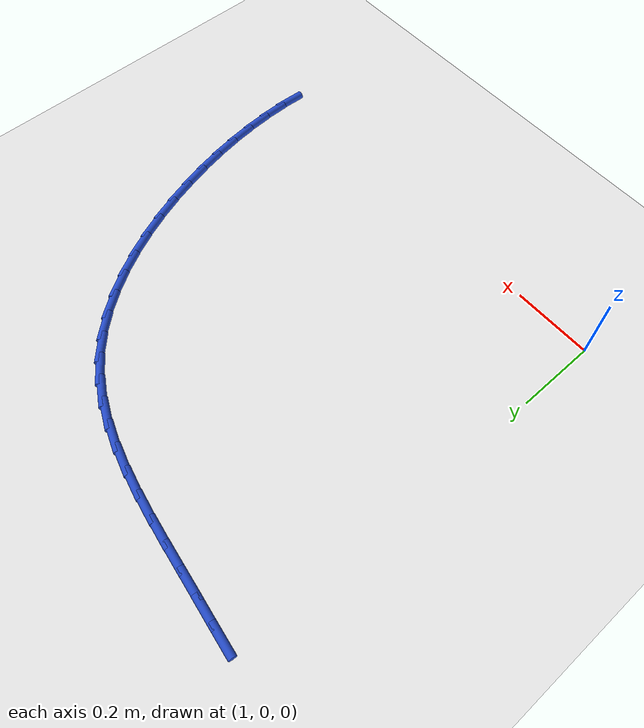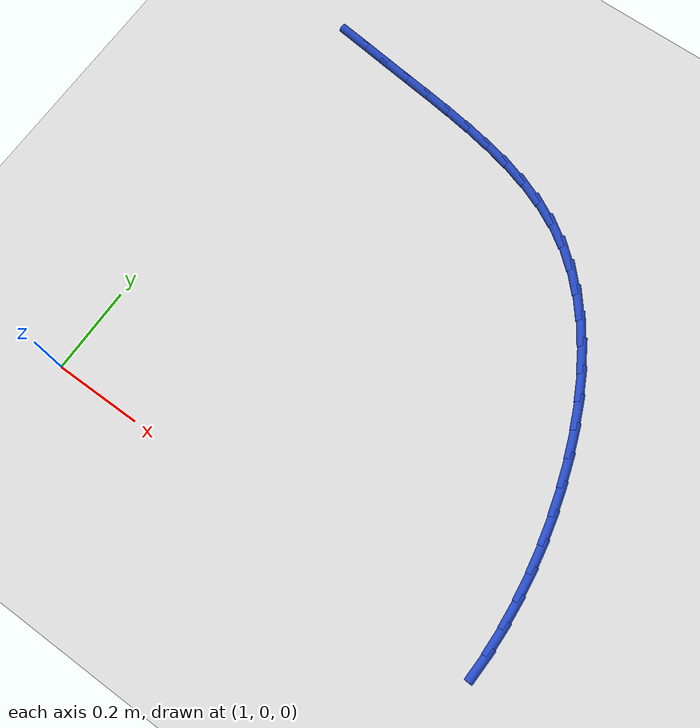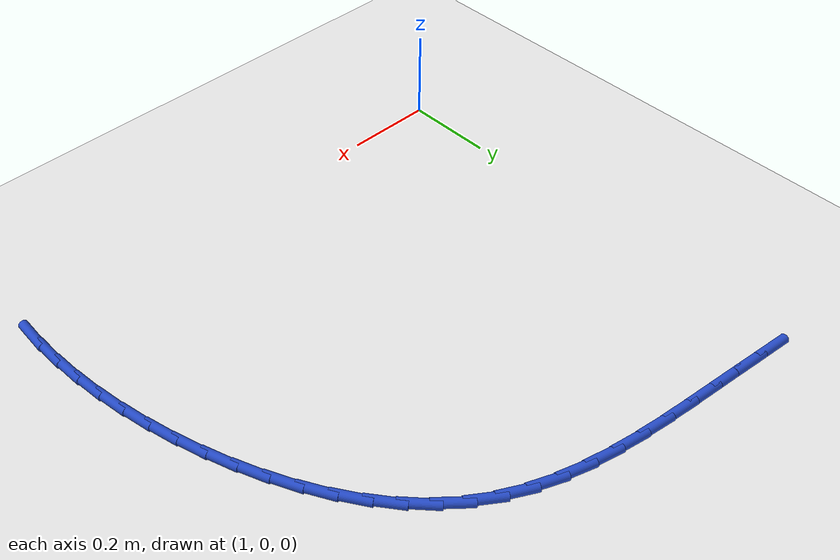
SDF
<sdf version="1.6">
 <world name="default">
  <model name="ground_plane">
   <static>1</static>
   <link name="link">
    <collision name="collision">
     <geometry><plane><normal>0 0 1</normal><size>100 100</size></plane></geometry>
     <surface><friction><ode><mu>100</mu><mu2>50</mu2></ode></friction></surface>
    </collision>
    <visual name="visual">
     <cast_shadows>0</cast_shadows>
     <geometry><plane><normal>0 0 1</normal><size>100 100</size></plane></geometry>
     <material>
      <script><uri>file://media/materials/scripts/gazebo.material</uri><name>Gazebo/WhiteGlow</name></script>
     </material>
    </visual>
   </link>
  </model>
  <model name="line">
   <link name="link_28">
    <pose>1.0512674438226834 1.0092971272964144 0.01 0 1.57 -0.11462141122425037</pose>
    <collision name="collision">
     <geometry><cylinder><radius>0.01</radius><length>0.08</length></cylinder></geometry>
    </collision>
    <visual name="visual">
     <material>
      <script><name>Gazebo/Blue</name><uri>file://media/materials/scripts/gazebo.material</uri></script>
     </material>
     <geometry><cylinder><radius>0.01</radius><length>0.08</length></cylinder></geometry>
    </visual>
   </link>
   <link name="link_29">
    <pose>1.1130544321649838 1.0021838365460047 0.01 0 1.57 -0.11784812972269673</pose>
    <collision name="collision">
     <geometry><cylinder><radius>0.01</radius><length>0.08</length></cylinder></geometry>
    </collision>
    <visual name="visual">
     <material>
      <script><name>Gazebo/Blue</name><uri>file://media/materials/scripts/gazebo.material</uri></script>
     </material>
     <geometry><cylinder><radius>0.01</radius><length>0.08</length></cylinder></geometry>
    </visual>
   </link>
   <link name="link_30">
    <pose>1.1751025331042473 0.994837543483416 0.01 0 1.57 -0.11409756510364673</pose>
    <collision name="collision">
     <geometry><cylinder><radius>0.01</radius><length>0.08</length></cylinder></geometry>
    </collision>
    <visual name="visual">
     <material>
      <script><name>Gazebo/Blue</name><uri>file://media/materials/scripts/gazebo.material</uri></script>
     </material>
     <geometry><cylinder><radius>0.01</radius><length>0.08</length></cylinder></geometry>
    </visual>
   </link>
   <link name="link_31">
    <pose>1.23719543463166 0.9877219904177814 0.01 0 1.57 -0.11747193738976824</pose>
    <collision name="collision">
     <geometry><cylinder><radius>0.01</radius><length>0.08</length></cylinder></geometry>
    </collision>
    <visual name="visual">
     <material>
      <script><name>Gazebo/Blue</name><uri>file://media/materials/scripts/gazebo.material</uri></script>
     </material>
     <geometry><cylinder><radius>0.01</radius><length>0.08</length></cylinder></geometry>
    </visual>
   </link>
   <link name="link_32">
    <pose>1.298990776540945 0.9804291949567864 0.01 0 1.57 -0.13223934000646717</pose>
    <collision name="collision">
     <geometry><cylinder><radius>0.01</radius><length>0.08</length></cylinder></geometry>
    </collision>
    <visual name="visual">
     <material>
      <script><name>Gazebo/Blue</name><uri>file://media/materials/scripts/gazebo.material</uri></script>
     </material>
     <geometry><cylinder><radius>0.01</radius><length>0.08</length></cylinder></geometry>
    </visual>
   </link>
   <link name="link_33">
    <pose>1.3601097946373972 0.9722994118382065 0.01 0 1.57 -0.1589200545236248</pose>
    <collision name="collision">
     <geometry><cylinder><radius>0.01</radius><length>0.08</length></cylinder></geometry>
    </collision>
    <visual name="visual">
     <material>
      <script><name>Gazebo/Blue</name><uri>file://media/materials/scripts/gazebo.material</uri></script>
     </material>
     <geometry><cylinder><radius>0.01</radius><length>0.08</length></cylinder></geometry>
    </visual>
   </link>
   <link name="link_34">
    <pose>1.4201737211805434 0.9626728712779618 0.01 0 1.57 -0.1983310808311384</pose>
    <collision name="collision">
     <geometry><cylinder><radius>0.01</radius><length>0.08</length></cylinder></geometry>
    </collision>
    <visual name="visual">
     <material>
      <script><name>Gazebo/Blue</name><uri>file://media/materials/scripts/gazebo.material</uri></script>
     </material>
     <geometry><cylinder><radius>0.01</radius><length>0.08</length></cylinder></geometry>
    </visual>
   </link>
   <link name="link_35">
    <pose>1.4788037884299097 0.950889803491972 0.01 0 1.57 -0.251511107022604</pose>
    <collision name="collision">
     <geometry><cylinder><radius>0.01</radius><length>0.08</length></cylinder></geometry>
    </collision>
    <visual name="visual">
     <material>
      <script><name>Gazebo/Blue</name><uri>file://media/materials/scripts/gazebo.material</uri></script>
     </material>
     <geometry><cylinder><radius>0.01</radius><length>0.08</length></cylinder></geometry>
    </visual>
   </link>
   <link name="link_36">
    <pose>1.5356212286450222 0.9362904386961568 0.01 0 1.57 -0.3195535651721722</pose>
    <collision name="collision">
     <geometry><cylinder><radius>0.01</radius><length>0.08</length></cylinder></geometry>
    </collision>
    <visual name="visual">
     <material>
      <script><name>Gazebo/Blue</name><uri>file://media/materials/scripts/gazebo.material</uri></script>
     </material>
     <geometry><cylinder><radius>0.01</radius><length>0.08</length></cylinder></geometry>
    </visual>
   </link>
   <link name="link_37">
    <pose>1.5902472740854066 0.9182150071064358 0.01 0 1.57 -0.403293802318189</pose>
    <collision name="collision">
     <geometry><cylinder><radius>0.01</radius><length>0.08</length></cylinder></geometry>
    </collision>
    <visual name="visual">
     <material>
      <script><name>Gazebo/Blue</name><uri>file://media/materials/scripts/gazebo.material</uri></script>
     </material>
     <geometry><cylinder><radius>0.01</radius><length>0.08</length></cylinder></geometry>
    </visual>
   </link>
   <link name="link_38">
    <pose>1.6423031570105895 0.8960037389387288 0.01 0 1.57 -0.5028127322522183</pose>
    <collision name="collision">
     <geometry><cylinder><radius>0.01</radius><length>0.08</length></cylinder></geometry>
    </collision>
    <visual name="visual">
     <material>
      <script><name>Gazebo/Blue</name><uri>file://media/materials/scripts/gazebo.material</uri></script>
     </material>
     <geometry><cylinder><radius>0.01</radius><length>0.08</length></cylinder></geometry>
    </visual>
   </link>
   <link name="link_39">
    <pose>1.6914101096800969 0.8689968644089554 0.01 0 1.57 -0.615758003478474</pose>
    <collision name="collision">
     <geometry><cylinder><radius>0.01</radius><length>0.08</length></cylinder></geometry>
    </collision>
    <visual name="visual">
     <material>
      <script><name>Gazebo/Blue</name><uri>file://media/materials/scripts/gazebo.material</uri></script>
     </material>
     <geometry><cylinder><radius>0.01</radius><length>0.08</length></cylinder></geometry>
    </visual>
   </link>
   <link name="link_40">
    <pose>1.7372104937354256 0.8365919794852947 0.01 0 1.57 -0.7269632293816658</pose>
    <collision name="collision">
     <geometry><cylinder><radius>0.01</radius><length>0.08</length></cylinder></geometry>
    </collision>
    <visual name="visual">
     <material>
      <script><name>Gazebo/Blue</name><uri>file://media/materials/scripts/gazebo.material</uri></script>
     </material>
     <geometry><cylinder><radius>0.01</radius><length>0.08</length></cylinder></geometry>
    </visual>
   </link>
   <link name="link_41">
    <pose>1.779603772836773 0.7988847057919027 0.01 0 1.57 -0.8269827403692275</pose>
    <collision name="collision">
     <geometry><cylinder><radius>0.01</radius><length>0.08</length></cylinder></geometry>
    </collision>
    <visual name="visual">
     <material>
      <script><name>Gazebo/Blue</name><uri>file://media/materials/scripts/gazebo.material</uri></script>
     </material>
     <geometry><cylinder><radius>0.01</radius><length>0.08</length></cylinder></geometry>
    </visual>
   </link>
   <link name="link_42">
    <pose>1.8186608984111652 0.7564362500212177 0.01 0 1.57 -0.915996941065235</pose>
    <collision name="collision">
     <geometry><cylinder><radius>0.01</radius><length>0.08</length></cylinder></geometry>
    </collision>
    <visual name="visual">
     <material>
      <script><name>Gazebo/Blue</name><uri>file://media/materials/scripts/gazebo.material</uri></script>
     </material>
     <geometry><cylinder><radius>0.01</radius><length>0.08</length></cylinder></geometry>
    </visual>
   </link>
   <link name="link_43">
    <pose>1.8544559432358165 0.7098162932546508 0.01 0 1.57 -0.9949408469476516</pose>
    <collision name="collision">
     <geometry><cylinder><radius>0.01</radius><length>0.08</length></cylinder></geometry>
    </collision>
    <visual name="visual">
     <material>
      <script><name>Gazebo/Blue</name><uri>file://media/materials/scripts/gazebo.material</uri></script>
     </material>
     <geometry><cylinder><radius>0.01</radius><length>0.08</length></cylinder></geometry>
    </visual>
   </link>
   <link name="link_44">
    <pose>1.8870629800879413 0.6595945165736118 0.01 0 1.57 -1.0650247648495403</pose>
    <collision name="collision">
     <geometry><cylinder><radius>0.01</radius><length>0.08</length></cylinder></geometry>
    </collision>
    <visual name="visual">
     <material>
      <script><name>Gazebo/Blue</name><uri>file://media/materials/scripts/gazebo.material</uri></script>
     </material>
     <geometry><cylinder><radius>0.01</radius><length>0.08</length></cylinder></geometry>
    </visual>
   </link>
   <link name="link_45">
    <pose>1.9165560817447522 0.6063406010595113 0.01 0 1.57 -1.127524290454282</pose>
    <collision name="collision">
     <geometry><cylinder><radius>0.01</radius><length>0.08</length></cylinder></geometry>
    </collision>
    <visual name="visual">
     <material>
      <script><name>Gazebo/Blue</name><uri>file://media/materials/scripts/gazebo.material</uri></script>
     </material>
     <geometry><cylinder><radius>0.01</radius><length>0.08</length></cylinder></geometry>
    </visual>
   </link>
   <link name="link_46">
    <pose>1.9430093209834634 0.5506242277937592 0.01 0 1.57 -1.1836667290593923</pose>
    <collision name="collision">
     <geometry><cylinder><radius>0.01</radius><length>0.08</length></cylinder></geometry>
    </collision>
    <visual name="visual">
     <material>
      <script><name>Gazebo/Blue</name><uri>file://media/materials/scripts/gazebo.material</uri></script>
     </material>
     <geometry><cylinder><radius>0.01</radius><length>0.08</length></cylinder></geometry>
    </visual>
   </link>
   <link name="link_47">
    <pose>1.966496770581289 0.49301507785776627 0.01 0 1.57 -1.2345834495005563</pose>
    <collision name="collision">
     <geometry><cylinder><radius>0.01</radius><length>0.08</length></cylinder></geometry>
    </collision>
    <visual name="visual">
     <material>
      <script><name>Gazebo/Blue</name><uri>file://media/materials/scripts/gazebo.material</uri></script>
     </material>
     <geometry><cylinder><radius>0.01</radius><length>0.08</length></cylinder></geometry>
    </visual>
   </link>
   <link name="link_48">
    <pose>1.9870925033154416 0.43408283233294237 0.01 0 1.57 -1.281323982804112</pose>
    <collision name="collision">
     <geometry><cylinder><radius>0.01</radius><length>0.08</length></cylinder></geometry>
    </collision>
    <visual name="visual">
     <material>
      <script><name>Gazebo/Blue</name><uri>file://media/materials/scripts/gazebo.material</uri></script>
     </material>
     <geometry><cylinder><radius>0.01</radius><length>0.08</length></cylinder></geometry>
    </visual>
   </link>
   <link name="link_49">
    <pose>2.004869890562925 0.3743947692457358 0.01 0 1.57 -1.32615456155325</pose>
    <collision name="collision">
     <geometry><cylinder><radius>0.01</radius><length>0.08</length></cylinder></geometry>
    </collision>
    <visual name="visual">
     <material>
      <script><name>Gazebo/Blue</name><uri>file://media/materials/scripts/gazebo.material</uri></script>
     </material>
     <geometry><cylinder><radius>0.01</radius><length>0.08</length></cylinder></geometry>
    </visual>
   </link>
   <link name="link_50">
    <pose>2.0198566539374316 0.3143617667692599 0.01 0 1.57 -1.3716829300161382</pose>
    <collision name="collision">
     <geometry><cylinder><radius>0.01</radius><length>0.08</length></cylinder></geometry>
    </collision>
    <visual name="visual">
     <material>
      <script><name>Gazebo/Blue</name><uri>file://media/materials/scripts/gazebo.material</uri></script>
     </material>
     <geometry><cylinder><radius>0.01</radius><length>0.08</length></cylinder></geometry>
    </visual>
   </link>
   <link name="link_51">
    <pose>2.0320076276927015 0.25414498497119553 0.01 0 1.57 -1.4182693421418637</pose>
    <collision name="collision">
     <geometry><cylinder><radius>0.01</radius><length>0.08</length></cylinder></geometry>
    </collision>
    <visual name="visual">
     <material>
      <script><name>Gazebo/Blue</name><uri>file://media/materials/scripts/gazebo.material</uri></script>
     </material>
     <geometry><cylinder><radius>0.01</radius><length>0.08</length></cylinder></geometry>
    </visual>
   </link>
   <link name="link_52">
    <pose>2.0412711204434633 0.19388322654187165 0.01 0 1.57 -1.4660697358441082</pose>
    <collision name="collision">
     <geometry><cylinder><radius>0.01</radius><length>0.08</length></cylinder></geometry>
    </collision>
    <visual name="visual">
     <material>
      <script><name>Gazebo/Blue</name><uri>file://media/materials/scripts/gazebo.material</uri></script>
     </material>
     <geometry><cylinder><radius>0.01</radius><length>0.08</length></cylinder></geometry>
    </visual>
   </link>
   <link name="link_53">
    <pose>2.0475954408044457 0.13371529417161726 0.01 0 1.57 -1.5152359874634829</pose>
    <collision name="collision">
     <geometry><cylinder><radius>0.01</radius><length>0.08</length></cylinder></geometry>
    </collision>
    <visual name="visual">
     <material>
      <script><name>Gazebo/Blue</name><uri>file://media/materials/scripts/gazebo.material</uri></script>
     </material>
     <geometry><cylinder><radius>0.01</radius><length>0.08</length></cylinder></geometry>
    </visual>
   </link>
   <link name="link_54">
    <pose>2.0509288973903783 0.07377999055076155 0.01 0 1.57 -1.5659125087668735</pose>
    <collision name="collision">
     <geometry><cylinder><radius>0.01</radius><length>0.08</length></cylinder></geometry>
    </collision>
    <visual name="visual">
     <material>
      <script><name>Gazebo/Blue</name><uri>file://media/materials/scripts/gazebo.material</uri></script>
     </material>
     <geometry><cylinder><radius>0.01</radius><length>0.08</length></cylinder></geometry>
    </visual>
   </link>
   <link name="link_55">
    <pose>2.051219798815988 0.014216118369633438 0.01 0 1.57 1.5233607704978909</pose>
    <collision name="collision">
     <geometry><cylinder><radius>0.01</radius><length>0.08</length></cylinder></geometry>
    </collision>
    <visual name="visual">
     <material>
      <script><name>Gazebo/Blue</name><uri>file://media/materials/scripts/gazebo.material</uri></script>
     </material>
     <geometry><cylinder><radius>0.01</radius><length>0.08</length></cylinder></geometry>
    </visual>
   </link>
  </model>
 </world>
</sdf>
